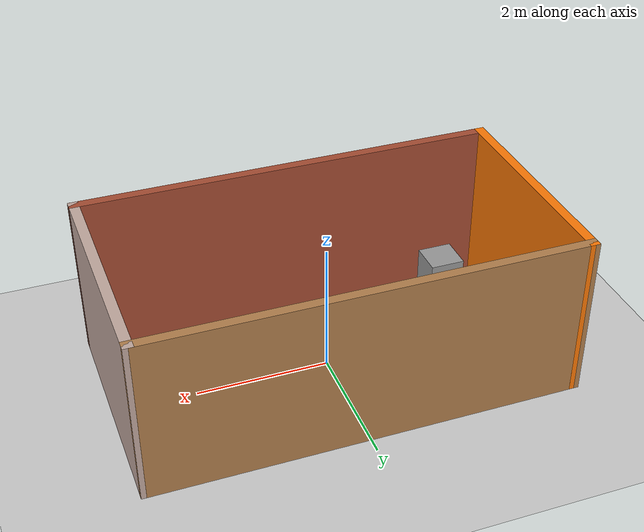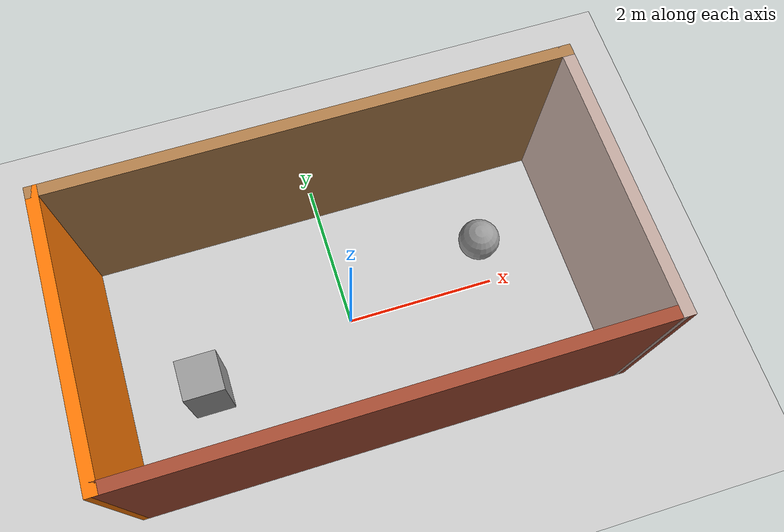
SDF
<sdf version="1.6">
 <world name="default">
  <light name="sun" type="directional">
   <pose>0 0 10 0 -0 0</pose>
   <diffuse>0.8 0.8 0.8 1</diffuse>
   <specular>0.1 0.1 0.1 1</specular>
   <attenuation>
    <range>1000</range>
    <constant>0.9</constant>
    <linear>0.01</linear>
    <quadratic>0.001</quadratic>
   </attenuation>
   <direction>-0.5 0.5 -1</direction>
  </light>
  <model name="ground_plane">
   <static>1</static>
   <link name="link">
    <collision name="collision">
     <geometry><plane><normal>0 0 1</normal><size>100 100</size></plane></geometry>
     <surface><friction><ode><mu>100</mu><mu2>50</mu2></ode></friction></surface>
    </collision>
    <visual name="visual">
     <cast_shadows>0</cast_shadows>
     <geometry><plane><normal>0 0 1</normal><size>100 100</size></plane></geometry>
     <material>
      <script><uri>file://media/materials/scripts/gazebo.material</uri><name>Gazebo/Grey</name></script>
     </material>
    </visual>
   </link>
  </model>
  <gravity>0 0 -9.8</gravity>
  <magnetic_field>6e-06 2.3e-05 -4.2e-05</magnetic_field>
  <atmosphere type="adiabatic"/>
  <physics name="default_physics" default="0" type="ode">
   <max_step_size>0.001</max_step_size>
   <real_time_factor>1</real_time_factor>
   <real_time_update_rate>1000</real_time_update_rate>
  </physics>
  <scene><ambient>0.4 0.4 0.4 1</ambient><background>0.7 0.7 0.7 1</background><shadows>1</shadows></scene>
  <spherical_coordinates>
   <surface_model>EARTH_WGS84</surface_model>
   <latitude_deg>0</latitude_deg>
   <longitude_deg>0</longitude_deg>
   <elevation>0</elevation>
   <heading_deg>0</heading_deg>
  </spherical_coordinates>
  <model name="rect">
   <pose>0.001199 0.021107 0 0 -0 0</pose>
   <link name="Wall_0">
    <collision name="Wall_0_Collision">
     <geometry><box><size>3.51002 0.15 2.5</size></box></geometry>
     <pose>0 0 1.25 0 -0 0</pose>
    </collision>
    <visual name="Wall_0_Visual">
     <pose>0 0 1.25 0 -0 0</pose>
     <geometry><box><size>3.51002 0.15 2.5</size></box></geometry>
     <material>
      <script><uri>file://media/materials/scripts/gazebo.material</uri><name>Gazebo/Grey</name></script>
      <ambient>0.996078 0.47451 0.0196078 1</ambient>
     </material>
    </visual>
    <pose>-3.17 0 0 0 -0 1.57377</pose>
   </link>
   <link name="Wall_1">
    <collision name="Wall_1_Collision">
     <geometry><box><size>6.49 0.15 2.5</size></box></geometry>
     <pose>0 0 1.25 0 -0 0</pose>
    </collision>
    <visual name="Wall_1_Visual">
     <pose>0 0 1.25 0 -0 0</pose>
     <geometry><box><size>6.49 0.15 2.5</size></box></geometry>
     <material>
      <script><uri>file://media/materials/scripts/gazebo.material</uri><name>Gazebo/Wood</name></script>
      <ambient>0.435294 0.796078 0.67451 1</ambient>
     </material>
    </visual>
    <pose>-0.005 1.68 0 0 -0 0</pose>
   </link>
   <link name="Wall_2">
    <collision name="Wall_2_Collision">
     <geometry><box><size>3.51002 0.15 2.5</size></box></geometry>
     <pose>0 0 1.25 0 -0 0</pose>
    </collision>
    <visual name="Wall_2_Visual">
     <pose>0 0 1.25 0 -0 0</pose>
     <geometry><box><size>3.51002 0.15 2.5</size></box></geometry>
     <material>
      <script><uri>file://media/materials/scripts/gazebo.material</uri><name>Gazebo/Grey</name></script>
      <ambient>0.760784 0.662745 0.627451 1</ambient>
     </material>
    </visual>
    <pose>3.17 0 0 0 0 -1.56782</pose>
   </link>
   <link name="Wall_3">
    <collision name="Wall_3_Collision">
     <geometry><box><size>6.49 0.15 2.5</size></box></geometry>
     <pose>0 0 1.25 0 -0 0</pose>
    </collision>
    <visual name="Wall_3_Visual">
     <pose>0 0 1.25 0 -0 0</pose>
     <geometry><box><size>6.49 0.15 2.5</size></box></geometry>
     <material>
      <script><uri>file://media/materials/scripts/gazebo.material</uri><name>Gazebo/Bricks</name></script>
      <ambient>0.921569 0.807843 0.615686 1</ambient>
     </material>
    </visual>
    <pose>0.005 -1.68 0 0 -0 3.14159</pose>
   </link>
   <static>1</static>
  </model>
  <model name="unit_box_0">
   <pose>-2.01987 -0.4721 0.673219 0 -0 0</pose>
   <link name="link">
    <inertial>
     <mass>1</mass>
     <inertia>
      <ixx>0.166667</ixx>
      <ixy>0</ixy>
      <ixz>0</ixz>
      <iyy>0.166667</iyy>
      <iyz>0</iyz>
      <izz>0.166667</izz>
     </inertia>
    </inertial>
    <collision name="collision"><geometry><box><size>0.511686 0.50531 1</size></box></geometry></collision>
    <visual name="visual">
     <geometry><box><size>0.511686 0.50531 1</size></box></geometry>
     <material>
      <script><name>Gazebo/Grey</name><uri>file://media/materials/scripts/gazebo.material</uri></script>
     </material>
    </visual>
   </link>
  </model>
  <model name="unit_sphere_0">
   <pose>1.92575 0.450411 0.5 0 -0 0</pose>
   <link name="link">
    <inertial>
     <mass>1</mass>
     <inertia><ixx>0.1</ixx><ixy>0</ixy><ixz>0</ixz><iyy>0.1</iyy><iyz>0</iyz><izz>0.1</izz></inertia>
    </inertial>
    <collision name="collision"><geometry><sphere><radius>0.272669</radius></sphere></geometry></collision>
    <visual name="visual">
     <geometry><sphere><radius>0.272669</radius></sphere></geometry>
     <material>
      <script><name>Gazebo/Grey</name><uri>file://media/materials/scripts/gazebo.material</uri></script>
     </material>
    </visual>
   </link>
  </model>
 </world>
</sdf>
